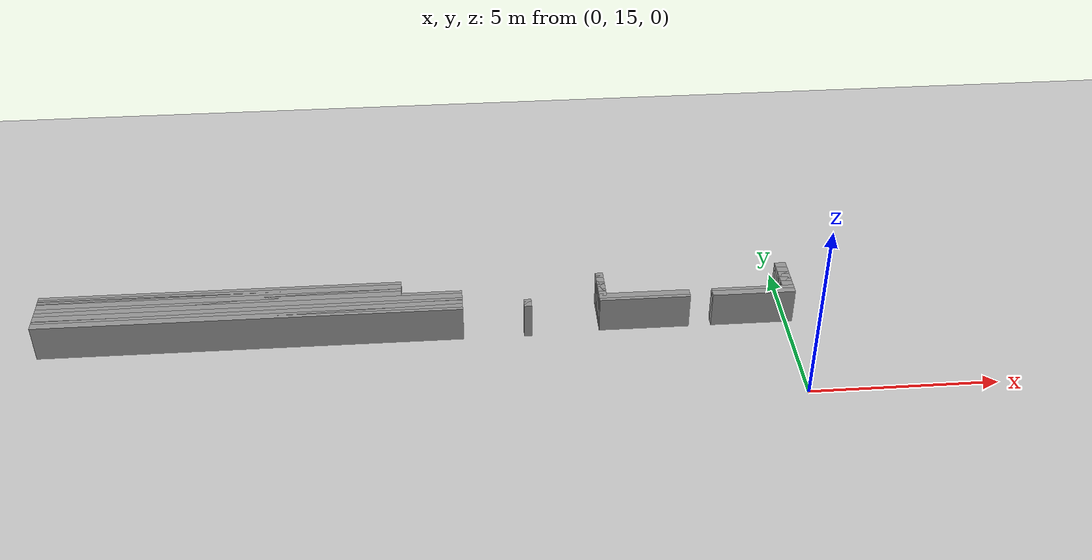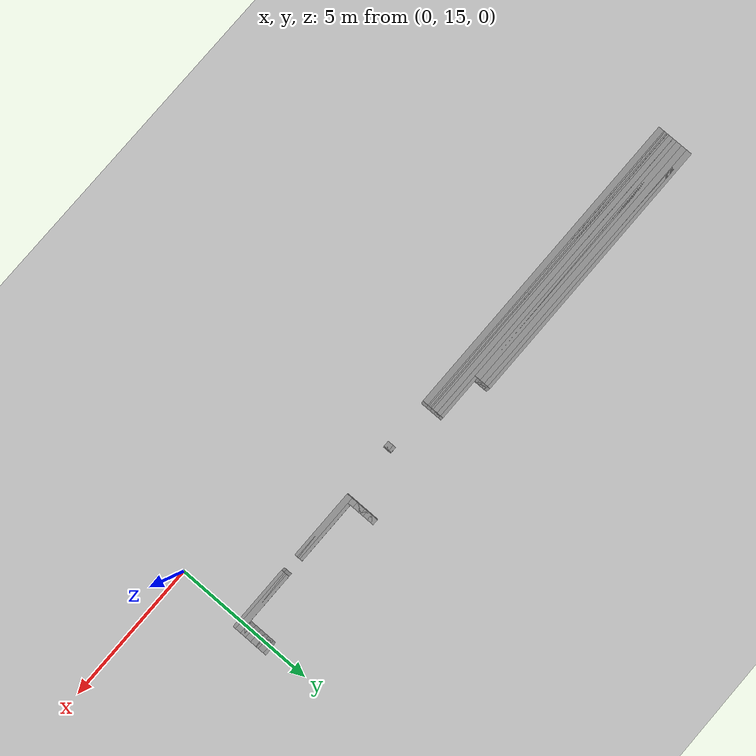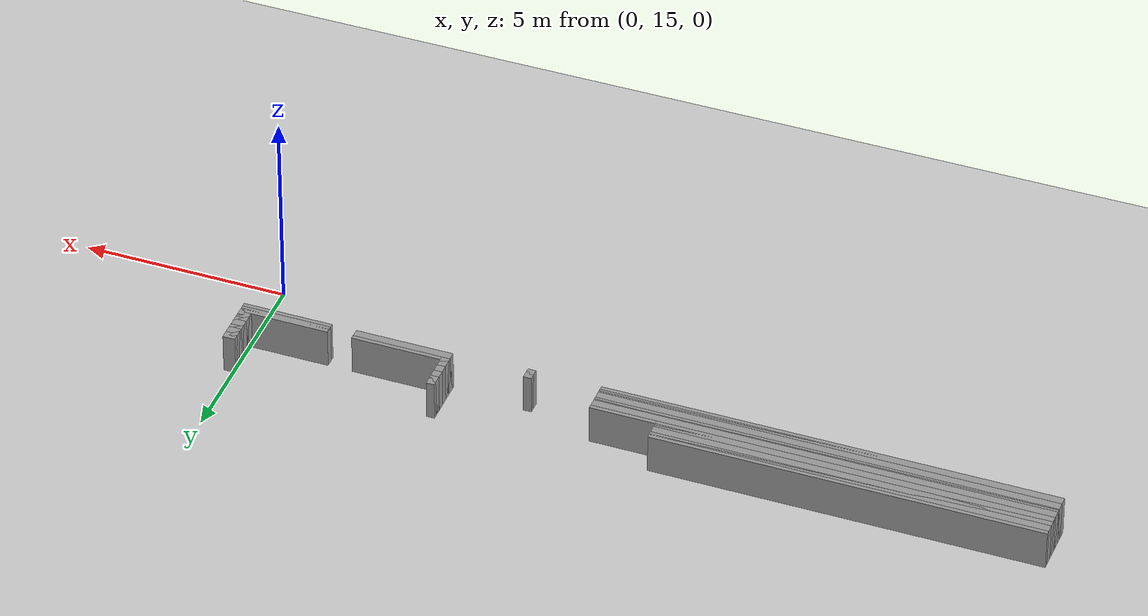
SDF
<sdf version="1.6">
 <world name="GridMap">
  <include><uri>model://sun</uri></include>
  <include><uri>model://ground_plane</uri></include>
  <model name="GridMap">
   <link name="Wall_(71.0,173.0)">
    <collision name="Wall_(71.0,173.0)_Collision">
     <geometry><box><size>0.2 0.2 1.0</size></box></geometry>
     <pose>-7.1000000000000005 17.3 0.5 0 -0 0</pose>
    </collision>
    <visual name="Wall_(71.0,173.0)_Visual">
     <geometry><box><size>0.2 0.2 1.0</size></box></geometry>
     <pose>-7.1000000000000005 17.3 0.5 0 -0 0</pose>
     <material>
      <script><uri>file://media/materials/scripts/gazebo.material</uri><name>Gazebo/Grey</name></script>
      <ambient>1 1 1 1</ambient>
     </material>
     <meta><layer>0</layer></meta>
    </visual>
    <pose>0 0 0.5 0 -0 0</pose>
   </link>
   <link name="Wall_(143.5,173.0)">
    <collision name="Wall_(143.5,173.0)_Collision">
     <geometry><box><size>11.100000000000001 0.2 1.0</size></box></geometry>
     <pose>-14.350000000000001 17.3 0.5 0 -0 0</pose>
    </collision>
    <visual name="Wall_(143.5,173.0)_Visual">
     <geometry><box><size>11.100000000000001 0.2 1.0</size></box></geometry>
     <pose>-14.350000000000001 17.3 0.5 0 -0 0</pose>
     <material>
      <script><uri>file://media/materials/scripts/gazebo.material</uri><name>Gazebo/Grey</name></script>
      <ambient>1 1 1 1</ambient>
     </material>
     <meta><layer>0</layer></meta>
    </visual>
    <pose>0 0 0.5 0 -0 0</pose>
   </link>
   <link name="Wall_(11.0,174.0)">
    <collision name="Wall_(11.0,174.0)_Collision">
     <geometry><box><size>2.2 0.2 1.0</size></box></geometry>
     <pose>-1.1 17.400000000000002 0.5 0 -0 0</pose>
    </collision>
    <visual name="Wall_(11.0,174.0)_Visual">
     <geometry><box><size>2.2 0.2 1.0</size></box></geometry>
     <pose>-1.1 17.400000000000002 0.5 0 -0 0</pose>
     <material>
      <script><uri>file://media/materials/scripts/gazebo.material</uri><name>Gazebo/Grey</name></script>
      <ambient>1 1 1 1</ambient>
     </material>
     <meta><layer>0</layer></meta>
    </visual>
    <pose>0 0 0.5 0 -0 0</pose>
   </link>
   <link name="Wall_(40.0,174.0)">
    <collision name="Wall_(40.0,174.0)_Collision">
     <geometry><box><size>2.4000000000000004 0.2 1.0</size></box></geometry>
     <pose>-4.0 17.400000000000002 0.5 0 -0 0</pose>
    </collision>
    <visual name="Wall_(40.0,174.0)_Visual">
     <geometry><box><size>2.4000000000000004 0.2 1.0</size></box></geometry>
     <pose>-4.0 17.400000000000002 0.5 0 -0 0</pose>
     <material>
      <script><uri>file://media/materials/scripts/gazebo.material</uri><name>Gazebo/Grey</name></script>
      <ambient>1 1 1 1</ambient>
     </material>
     <meta><layer>0</layer></meta>
    </visual>
    <pose>0 0 0.5 0 -0 0</pose>
   </link>
   <link name="Wall_(71.0,174.0)">
    <collision name="Wall_(71.0,174.0)_Collision">
     <geometry><box><size>0.2 0.2 1.0</size></box></geometry>
     <pose>-7.1000000000000005 17.400000000000002 0.5 0 -0 0</pose>
    </collision>
    <visual name="Wall_(71.0,174.0)_Visual">
     <geometry><box><size>0.2 0.2 1.0</size></box></geometry>
     <pose>-7.1000000000000005 17.400000000000002 0.5 0 -0 0</pose>
     <material>
      <script><uri>file://media/materials/scripts/gazebo.material</uri><name>Gazebo/Grey</name></script>
      <ambient>1 1 1 1</ambient>
     </material>
     <meta><layer>0</layer></meta>
    </visual>
    <pose>0 0 0.5 0 -0 0</pose>
   </link>
   <link name="Wall_(143.5,174.0)">
    <collision name="Wall_(143.5,174.0)_Collision">
     <geometry><box><size>11.100000000000001 0.2 1.0</size></box></geometry>
     <pose>-14.350000000000001 17.400000000000002 0.5 0 -0 0</pose>
    </collision>
    <visual name="Wall_(143.5,174.0)_Visual">
     <geometry><box><size>11.100000000000001 0.2 1.0</size></box></geometry>
     <pose>-14.350000000000001 17.400000000000002 0.5 0 -0 0</pose>
     <material>
      <script><uri>file://media/materials/scripts/gazebo.material</uri><name>Gazebo/Grey</name></script>
      <ambient>1 1 1 1</ambient>
     </material>
     <meta><layer>0</layer></meta>
    </visual>
    <pose>0 0 0.5 0 -0 0</pose>
   </link>
   <link name="Wall_(11.0,175.0)">
    <collision name="Wall_(11.0,175.0)_Collision">
     <geometry><box><size>2.2 0.2 1.0</size></box></geometry>
     <pose>-1.1 17.5 0.5 0 -0 0</pose>
    </collision>
    <visual name="Wall_(11.0,175.0)_Visual">
     <geometry><box><size>2.2 0.2 1.0</size></box></geometry>
     <pose>-1.1 17.5 0.5 0 -0 0</pose>
     <material>
      <script><uri>file://media/materials/scripts/gazebo.material</uri><name>Gazebo/Grey</name></script>
      <ambient>1 1 1 1</ambient>
     </material>
     <meta><layer>0</layer></meta>
    </visual>
    <pose>0 0 0.5 0 -0 0</pose>
   </link>
   <link name="Wall_(40.0,175.0)">
    <collision name="Wall_(40.0,175.0)_Collision">
     <geometry><box><size>2.4000000000000004 0.2 1.0</size></box></geometry>
     <pose>-4.0 17.5 0.5 0 -0 0</pose>
    </collision>
    <visual name="Wall_(40.0,175.0)_Visual">
     <geometry><box><size>2.4000000000000004 0.2 1.0</size></box></geometry>
     <pose>-4.0 17.5 0.5 0 -0 0</pose>
     <material>
      <script><uri>file://media/materials/scripts/gazebo.material</uri><name>Gazebo/Grey</name></script>
      <ambient>1 1 1 1</ambient>
     </material>
     <meta><layer>0</layer></meta>
    </visual>
    <pose>0 0 0.5 0 -0 0</pose>
   </link>
   <link name="Wall_(143.5,175.0)">
    <collision name="Wall_(143.5,175.0)_Collision">
     <geometry><box><size>11.100000000000001 0.2 1.0</size></box></geometry>
     <pose>-14.350000000000001 17.5 0.5 0 -0 0</pose>
    </collision>
    <visual name="Wall_(143.5,175.0)_Visual">
     <geometry><box><size>11.100000000000001 0.2 1.0</size></box></geometry>
     <pose>-14.350000000000001 17.5 0.5 0 -0 0</pose>
     <material>
      <script><uri>file://media/materials/scripts/gazebo.material</uri><name>Gazebo/Grey</name></script>
      <ambient>1 1 1 1</ambient>
     </material>
     <meta><layer>0</layer></meta>
    </visual>
    <pose>0 0 0.5 0 -0 0</pose>
   </link>
   <link name="Wall_(1.5,176.0)">
    <collision name="Wall_(1.5,176.0)_Collision">
     <geometry><box><size>0.30000000000000004 0.2 1.0</size></box></geometry>
     <pose>-0.15000000000000002 17.6 0.5 0 -0 0</pose>
    </collision>
    <visual name="Wall_(1.5,176.0)_Visual">
     <geometry><box><size>0.30000000000000004 0.2 1.0</size></box></geometry>
     <pose>-0.15000000000000002 17.6 0.5 0 -0 0</pose>
     <material>
      <script><uri>file://media/materials/scripts/gazebo.material</uri><name>Gazebo/Grey</name></script>
      <ambient>1 1 1 1</ambient>
     </material>
     <meta><layer>0</layer></meta>
    </visual>
    <pose>0 0 0.5 0 -0 0</pose>
   </link>
   <link name="Wall_(51.0,176.0)">
    <collision name="Wall_(51.0,176.0)_Collision">
     <geometry><box><size>0.2 0.2 1.0</size></box></geometry>
     <pose>-5.1000000000000005 17.6 0.5 0 -0 0</pose>
    </collision>
    <visual name="Wall_(51.0,176.0)_Visual">
     <geometry><box><size>0.2 0.2 1.0</size></box></geometry>
     <pose>-5.1000000000000005 17.6 0.5 0 -0 0</pose>
     <material>
      <script><uri>file://media/materials/scripts/gazebo.material</uri><name>Gazebo/Grey</name></script>
      <ambient>1 1 1 1</ambient>
     </material>
     <meta><layer>0</layer></meta>
    </visual>
    <pose>0 0 0.5 0 -0 0</pose>
   </link>
   <link name="Wall_(143.5,176.0)">
    <collision name="Wall_(143.5,176.0)_Collision">
     <geometry><box><size>11.100000000000001 0.2 1.0</size></box></geometry>
     <pose>-14.350000000000001 17.6 0.5 0 -0 0</pose>
    </collision>
    <visual name="Wall_(143.5,176.0)_Visual">
     <geometry><box><size>11.100000000000001 0.2 1.0</size></box></geometry>
     <pose>-14.350000000000001 17.6 0.5 0 -0 0</pose>
     <material>
      <script><uri>file://media/materials/scripts/gazebo.material</uri><name>Gazebo/Grey</name></script>
      <ambient>1 1 1 1</ambient>
     </material>
     <meta><layer>0</layer></meta>
    </visual>
    <pose>0 0 0.5 0 -0 0</pose>
   </link>
   <link name="Wall_(1.5,177.0)">
    <collision name="Wall_(1.5,177.0)_Collision">
     <geometry><box><size>0.30000000000000004 0.2 1.0</size></box></geometry>
     <pose>-0.15000000000000002 17.7 0.5 0 -0 0</pose>
    </collision>
    <visual name="Wall_(1.5,177.0)_Visual">
     <geometry><box><size>0.30000000000000004 0.2 1.0</size></box></geometry>
     <pose>-0.15000000000000002 17.7 0.5 0 -0 0</pose>
     <material>
      <script><uri>file://media/materials/scripts/gazebo.material</uri><name>Gazebo/Grey</name></script>
      <ambient>1 1 1 1</ambient>
     </material>
     <meta><layer>0</layer></meta>
    </visual>
    <pose>0 0 0.5 0 -0 0</pose>
   </link>
   <link name="Wall_(51.0,177.0)">
    <collision name="Wall_(51.0,177.0)_Collision">
     <geometry><box><size>0.2 0.2 1.0</size></box></geometry>
     <pose>-5.1000000000000005 17.7 0.5 0 -0 0</pose>
    </collision>
    <visual name="Wall_(51.0,177.0)_Visual">
     <geometry><box><size>0.2 0.2 1.0</size></box></geometry>
     <pose>-5.1000000000000005 17.7 0.5 0 -0 0</pose>
     <material>
      <script><uri>file://media/materials/scripts/gazebo.material</uri><name>Gazebo/Grey</name></script>
      <ambient>1 1 1 1</ambient>
     </material>
     <meta><layer>0</layer></meta>
    </visual>
    <pose>0 0 0.5 0 -0 0</pose>
   </link>
   <link name="Wall_(143.5,177.0)">
    <collision name="Wall_(143.5,177.0)_Collision">
     <geometry><box><size>11.100000000000001 0.2 1.0</size></box></geometry>
     <pose>-14.350000000000001 17.7 0.5 0 -0 0</pose>
    </collision>
    <visual name="Wall_(143.5,177.0)_Visual">
     <geometry><box><size>11.100000000000001 0.2 1.0</size></box></geometry>
     <pose>-14.350000000000001 17.7 0.5 0 -0 0</pose>
     <material>
      <script><uri>file://media/materials/scripts/gazebo.material</uri><name>Gazebo/Grey</name></script>
      <ambient>1 1 1 1</ambient>
     </material>
     <meta><layer>0</layer></meta>
    </visual>
    <pose>0 0 0.5 0 -0 0</pose>
   </link>
   <link name="Wall_(1.5,178.0)">
    <collision name="Wall_(1.5,178.0)_Collision">
     <geometry><box><size>0.30000000000000004 0.2 1.0</size></box></geometry>
     <pose>-0.15000000000000002 17.8 0.5 0 -0 0</pose>
    </collision>
    <visual name="Wall_(1.5,178.0)_Visual">
     <geometry><box><size>0.30000000000000004 0.2 1.0</size></box></geometry>
     <pose>-0.15000000000000002 17.8 0.5 0 -0 0</pose>
     <material>
      <script><uri>file://media/materials/scripts/gazebo.material</uri><name>Gazebo/Grey</name></script>
      <ambient>1 1 1 1</ambient>
     </material>
     <meta><layer>0</layer></meta>
    </visual>
    <pose>0 0 0.5 0 -0 0</pose>
   </link>
   <link name="Wall_(51.0,178.0)">
    <collision name="Wall_(51.0,178.0)_Collision">
     <geometry><box><size>0.2 0.2 1.0</size></box></geometry>
     <pose>-5.1000000000000005 17.8 0.5 0 -0 0</pose>
    </collision>
    <visual name="Wall_(51.0,178.0)_Visual">
     <geometry><box><size>0.2 0.2 1.0</size></box></geometry>
     <pose>-5.1000000000000005 17.8 0.5 0 -0 0</pose>
     <material>
      <script><uri>file://media/materials/scripts/gazebo.material</uri><name>Gazebo/Grey</name></script>
      <ambient>1 1 1 1</ambient>
     </material>
     <meta><layer>0</layer></meta>
    </visual>
    <pose>0 0 0.5 0 -0 0</pose>
   </link>
   <link name="Wall_(143.5,178.0)">
    <collision name="Wall_(143.5,178.0)_Collision">
     <geometry><box><size>11.100000000000001 0.2 1.0</size></box></geometry>
     <pose>-14.350000000000001 17.8 0.5 0 -0 0</pose>
    </collision>
    <visual name="Wall_(143.5,178.0)_Visual">
     <geometry><box><size>11.100000000000001 0.2 1.0</size></box></geometry>
     <pose>-14.350000000000001 17.8 0.5 0 -0 0</pose>
     <material>
      <script><uri>file://media/materials/scripts/gazebo.material</uri><name>Gazebo/Grey</name></script>
      <ambient>1 1 1 1</ambient>
     </material>
     <meta><layer>0</layer></meta>
    </visual>
    <pose>0 0 0.5 0 -0 0</pose>
   </link>
   <link name="Wall_(1.5,179.0)">
    <collision name="Wall_(1.5,179.0)_Collision">
     <geometry><box><size>0.30000000000000004 0.2 1.0</size></box></geometry>
     <pose>-0.15000000000000002 17.900000000000002 0.5 0 -0 0</pose>
    </collision>
    <visual name="Wall_(1.5,179.0)_Visual">
     <geometry><box><size>0.30000000000000004 0.2 1.0</size></box></geometry>
     <pose>-0.15000000000000002 17.900000000000002 0.5 0 -0 0</pose>
     <material>
      <script><uri>file://media/materials/scripts/gazebo.material</uri><name>Gazebo/Grey</name></script>
      <ambient>1 1 1 1</ambient>
     </material>
     <meta><layer>0</layer></meta>
    </visual>
    <pose>0 0 0.5 0 -0 0</pose>
   </link>
   <link name="Wall_(51.0,179.0)">
    <collision name="Wall_(51.0,179.0)_Collision">
     <geometry><box><size>0.2 0.2 1.0</size></box></geometry>
     <pose>-5.1000000000000005 17.900000000000002 0.5 0 -0 0</pose>
    </collision>
    <visual name="Wall_(51.0,179.0)_Visual">
     <geometry><box><size>0.2 0.2 1.0</size></box></geometry>
     <pose>-5.1000000000000005 17.900000000000002 0.5 0 -0 0</pose>
     <material>
      <script><uri>file://media/materials/scripts/gazebo.material</uri><name>Gazebo/Grey</name></script>
      <ambient>1 1 1 1</ambient>
     </material>
     <meta><layer>0</layer></meta>
    </visual>
    <pose>0 0 0.5 0 -0 0</pose>
   </link>
   <link name="Wall_(143.5,179.0)">
    <collision name="Wall_(143.5,179.0)_Collision">
     <geometry><box><size>11.100000000000001 0.2 1.0</size></box></geometry>
     <pose>-14.350000000000001 17.900000000000002 0.5 0 -0 0</pose>
    </collision>
    <visual name="Wall_(143.5,179.0)_Visual">
     <geometry><box><size>11.100000000000001 0.2 1.0</size></box></geometry>
     <pose>-14.350000000000001 17.900000000000002 0.5 0 -0 0</pose>
     <material>
      <script><uri>file://media/materials/scripts/gazebo.material</uri><name>Gazebo/Grey</name></script>
      <ambient>1 1 1 1</ambient>
     </material>
     <meta><layer>0</layer></meta>
    </visual>
    <pose>0 0 0.5 0 -0 0</pose>
   </link>
   <link name="Wall_(1.5,180.0)">
    <collision name="Wall_(1.5,180.0)_Collision">
     <geometry><box><size>0.30000000000000004 0.2 1.0</size></box></geometry>
     <pose>-0.15000000000000002 18.0 0.5 0 -0 0</pose>
    </collision>
    <visual name="Wall_(1.5,180.0)_Visual">
     <geometry><box><size>0.30000000000000004 0.2 1.0</size></box></geometry>
     <pose>-0.15000000000000002 18.0 0.5 0 -0 0</pose>
     <material>
      <script><uri>file://media/materials/scripts/gazebo.material</uri><name>Gazebo/Grey</name></script>
      <ambient>1 1 1 1</ambient>
     </material>
     <meta><layer>0</layer></meta>
    </visual>
    <pose>0 0 0.5 0 -0 0</pose>
   </link>
   <link name="Wall_(51.0,180.0)">
    <collision name="Wall_(51.0,180.0)_Collision">
     <geometry><box><size>0.2 0.2 1.0</size></box></geometry>
     <pose>-5.1000000000000005 18.0 0.5 0 -0 0</pose>
    </collision>
    <visual name="Wall_(51.0,180.0)_Visual">
     <geometry><box><size>0.2 0.2 1.0</size></box></geometry>
     <pose>-5.1000000000000005 18.0 0.5 0 -0 0</pose>
     <material>
      <script><uri>file://media/materials/scripts/gazebo.material</uri><name>Gazebo/Grey</name></script>
      <ambient>1 1 1 1</ambient>
     </material>
     <meta><layer>0</layer></meta>
    </visual>
    <pose>0 0 0.5 0 -0 0</pose>
   </link>
   <link name="Wall_(151.5,180.0)">
    <collision name="Wall_(151.5,180.0)_Collision">
     <geometry><box><size>9.5 0.2 1.0</size></box></geometry>
     <pose>-15.15 18.0 0.5 0 -0 0</pose>
    </collision>
    <visual name="Wall_(151.5,180.0)_Visual">
     <geometry><box><size>9.5 0.2 1.0</size></box></geometry>
     <pose>-15.15 18.0 0.5 0 -0 0</pose>
     <material>
      <script><uri>file://media/materials/scripts/gazebo.material</uri><name>Gazebo/Grey</name></script>
      <ambient>1 1 1 1</ambient>
     </material>
     <meta><layer>0</layer></meta>
    </visual>
    <pose>0 0 0.5 0 -0 0</pose>
   </link>
   <link name="Wall_(1.5,181.0)">
    <collision name="Wall_(1.5,181.0)_Collision">
     <geometry><box><size>0.30000000000000004 0.2 1.0</size></box></geometry>
     <pose>-0.15000000000000002 18.1 0.5 0 -0 0</pose>
    </collision>
    <visual name="Wall_(1.5,181.0)_Visual">
     <geometry><box><size>0.30000000000000004 0.2 1.0</size></box></geometry>
     <pose>-0.15000000000000002 18.1 0.5 0 -0 0</pose>
     <material>
      <script><uri>file://media/materials/scripts/gazebo.material</uri><name>Gazebo/Grey</name></script>
      <ambient>1 1 1 1</ambient>
     </material>
     <meta><layer>0</layer></meta>
    </visual>
    <pose>0 0 0.5 0 -0 0</pose>
   </link>
   <link name="Wall_(51.0,181.0)">
    <collision name="Wall_(51.0,181.0)_Collision">
     <geometry><box><size>0.2 0.2 1.0</size></box></geometry>
     <pose>-5.1000000000000005 18.1 0.5 0 -0 0</pose>
    </collision>
    <visual name="Wall_(51.0,181.0)_Visual">
     <geometry><box><size>0.2 0.2 1.0</size></box></geometry>
     <pose>-5.1000000000000005 18.1 0.5 0 -0 0</pose>
     <material>
      <script><uri>file://media/materials/scripts/gazebo.material</uri><name>Gazebo/Grey</name></script>
      <ambient>1 1 1 1</ambient>
     </material>
     <meta><layer>0</layer></meta>
    </visual>
    <pose>0 0 0.5 0 -0 0</pose>
   </link>
   <link name="Wall_(151.5,181.0)">
    <collision name="Wall_(151.5,181.0)_Collision">
     <geometry><box><size>9.5 0.2 1.0</size></box></geometry>
     <pose>-15.15 18.1 0.5 0 -0 0</pose>
    </collision>
    <visual name="Wall_(151.5,181.0)_Visual">
     <geometry><box><size>9.5 0.2 1.0</size></box></geometry>
     <pose>-15.15 18.1 0.5 0 -0 0</pose>
     <material>
      <script><uri>file://media/materials/scripts/gazebo.material</uri><name>Gazebo/Grey</name></script>
      <ambient>1 1 1 1</ambient>
     </material>
     <meta><layer>0</layer></meta>
    </visual>
    <pose>0 0 0.5 0 -0 0</pose>
   </link>
   <link name="Wall_(1.5,182.0)">
    <collision name="Wall_(1.5,182.0)_Collision">
     <geometry><box><size>0.30000000000000004 0.2 1.0</size></box></geometry>
     <pose>-0.15000000000000002 18.2 0.5 0 -0 0</pose>
    </collision>
    <visual name="Wall_(1.5,182.0)_Visual">
     <geometry><box><size>0.30000000000000004 0.2 1.0</size></box></geometry>
     <pose>-0.15000000000000002 18.2 0.5 0 -0 0</pose>
     <material>
      <script><uri>file://media/materials/scripts/gazebo.material</uri><name>Gazebo/Grey</name></script>
      <ambient>1 1 1 1</ambient>
     </material>
     <meta><layer>0</layer></meta>
    </visual>
    <pose>0 0 0.5 0 -0 0</pose>
   </link>
   <link name="Wall_(51.0,182.0)">
    <collision name="Wall_(51.0,182.0)_Collision">
     <geometry><box><size>0.2 0.2 1.0</size></box></geometry>
     <pose>-5.1000000000000005 18.2 0.5 0 -0 0</pose>
    </collision>
    <visual name="Wall_(51.0,182.0)_Visual">
     <geometry><box><size>0.2 0.2 1.0</size></box></geometry>
     <pose>-5.1000000000000005 18.2 0.5 0 -0 0</pose>
     <material>
      <script><uri>file://media/materials/scripts/gazebo.material</uri><name>Gazebo/Grey</name></script>
      <ambient>1 1 1 1</ambient>
     </material>
     <meta><layer>0</layer></meta>
    </visual>
    <pose>0 0 0.5 0 -0 0</pose>
   </link>
   <link name="Wall_(151.5,182.0)">
    <collision name="Wall_(151.5,182.0)_Collision">
     <geometry><box><size>9.5 0.2 1.0</size></box></geometry>
     <pose>-15.15 18.2 0.5 0 -0 0</pose>
    </collision>
    <visual name="Wall_(151.5,182.0)_Visual">
     <geometry><box><size>9.5 0.2 1.0</size></box></geometry>
     <pose>-15.15 18.2 0.5 0 -0 0</pose>
     <material>
      <script><uri>file://media/materials/scripts/gazebo.material</uri><name>Gazebo/Grey</name></script>
      <ambient>1 1 1 1</ambient>
     </material>
     <meta><layer>0</layer></meta>
    </visual>
    <pose>0 0 0.5 0 -0 0</pose>
   </link>
   <link name="Wall_(1.5,183.0)">
    <collision name="Wall_(1.5,183.0)_Collision">
     <geometry><box><size>0.30000000000000004 0.2 1.0</size></box></geometry>
     <pose>-0.15000000000000002 18.3 0.5 0 -0 0</pose>
    </collision>
    <visual name="Wall_(1.5,183.0)_Visual">
     <geometry><box><size>0.30000000000000004 0.2 1.0</size></box></geometry>
     <pose>-0.15000000000000002 18.3 0.5 0 -0 0</pose>
     <material>
      <script><uri>file://media/materials/scripts/gazebo.material</uri><name>Gazebo/Grey</name></script>
      <ambient>1 1 1 1</ambient>
     </material>
     <meta><layer>0</layer></meta>
    </visual>
    <pose>0 0 0.5 0 -0 0</pose>
   </link>
   <link name="Wall_(51.0,183.0)">
    <collision name="Wall_(51.0,183.0)_Collision">
     <geometry><box><size>0.2 0.2 1.0</size></box></geometry>
     <pose>-5.1000000000000005 18.3 0.5 0 -0 0</pose>
    </collision>
    <visual name="Wall_(51.0,183.0)_Visual">
     <geometry><box><size>0.2 0.2 1.0</size></box></geometry>
     <pose>-5.1000000000000005 18.3 0.5 0 -0 0</pose>
     <material>
      <script><uri>file://media/materials/scripts/gazebo.material</uri><name>Gazebo/Grey</name></script>
      <ambient>1 1 1 1</ambient>
     </material>
     <meta><layer>0</layer></meta>
    </visual>
    <pose>0 0 0.5 0 -0 0</pose>
   </link>
   <link name="Wall_(151.5,183.0)">
    <collision name="Wall_(151.5,183.0)_Collision">
     <geometry><box><size>9.5 0.2 1.0</size></box></geometry>
     <pose>-15.15 18.3 0.5 0 -0 0</pose>
    </collision>
    <visual name="Wall_(151.5,183.0)_Visual">
     <geometry><box><size>9.5 0.2 1.0</size></box></geometry>
     <pose>-15.15 18.3 0.5 0 -0 0</pose>
     <material>
      <script><uri>file://media/materials/scripts/gazebo.material</uri><name>Gazebo/Grey</name></script>
      <ambient>1 1 1 1</ambient>
     </material>
     <meta><layer>0</layer></meta>
    </visual>
    <pose>0 0 0.5 0 -0 0</pose>
   </link>
   <link name="Wall_(1.5,184.0)">
    <collision name="Wall_(1.5,184.0)_Collision">
     <geometry><box><size>0.30000000000000004 0.2 1.0</size></box></geometry>
     <pose>-0.15000000000000002 18.400000000000002 0.5 0 -0 0</pose>
    </collision>
    <visual name="Wall_(1.5,184.0)_Visual">
     <geometry><box><size>0.30000000000000004 0.2 1.0</size></box></geometry>
     <pose>-0.15000000000000002 18.400000000000002 0.5 0 -0 0</pose>
     <material>
      <script><uri>file://media/materials/scripts/gazebo.material</uri><name>Gazebo/Grey</name></script>
      <ambient>1 1 1 1</ambient>
     </material>
     <meta><layer>0</layer></meta>
    </visual>
    <pose>0 0 0.5 0 -0 0</pose>
   </link>
   <link name="Wall_(51.0,184.0)">
    <collision name="Wall_(51.0,184.0)_Collision">
     <geometry><box><size>0.2 0.2 1.0</size></box></geometry>
     <pose>-5.1000000000000005 18.400000000000002 0.5 0 -0 0</pose>
    </collision>
    <visual name="Wall_(51.0,184.0)_Visual">
     <geometry><box><size>0.2 0.2 1.0</size></box></geometry>
     <pose>-5.1000000000000005 18.400000000000002 0.5 0 -0 0</pose>
     <material>
      <script><uri>file://media/materials/scripts/gazebo.material</uri><name>Gazebo/Grey</name></script>
      <ambient>1 1 1 1</ambient>
     </material>
     <meta><layer>0</layer></meta>
    </visual>
    <pose>0 0 0.5 0 -0 0</pose>
   </link>
   <link name="Wall_(151.5,184.0)">
    <collision name="Wall_(151.5,184.0)_Collision">
     <geometry><box><size>9.5 0.2 1.0</size></box></geometry>
     <pose>-15.15 18.400000000000002 0.5 0 -0 0</pose>
    </collision>
    <visual name="Wall_(151.5,184.0)_Visual">
     <geometry><box><size>9.5 0.2 1.0</size></box></geometry>
     <pose>-15.15 18.400000000000002 0.5 0 -0 0</pose>
     <material>
      <script><uri>file://media/materials/scripts/gazebo.material</uri><name>Gazebo/Grey</name></script>
      <ambient>1 1 1 1</ambient>
     </material>
     <meta><layer>0</layer></meta>
    </visual>
    <pose>0 0 0.5 0 -0 0</pose>
   </link>
   <link name="Wall_(1.5,185.0)">
    <collision name="Wall_(1.5,185.0)_Collision">
     <geometry><box><size>0.30000000000000004 0.2 1.0</size></box></geometry>
     <pose>-0.15000000000000002 18.5 0.5 0 -0 0</pose>
    </collision>
    <visual name="Wall_(1.5,185.0)_Visual">
     <geometry><box><size>0.30000000000000004 0.2 1.0</size></box></geometry>
     <pose>-0.15000000000000002 18.5 0.5 0 -0 0</pose>
     <material>
      <script><uri>file://media/materials/scripts/gazebo.material</uri><name>Gazebo/Grey</name></script>
      <ambient>1 1 1 1</ambient>
     </material>
     <meta><layer>0</layer></meta>
    </visual>
    <pose>0 0 0.5 0 -0 0</pose>
   </link>
   <static>1</static>
  </model>
 </world>
</sdf>
